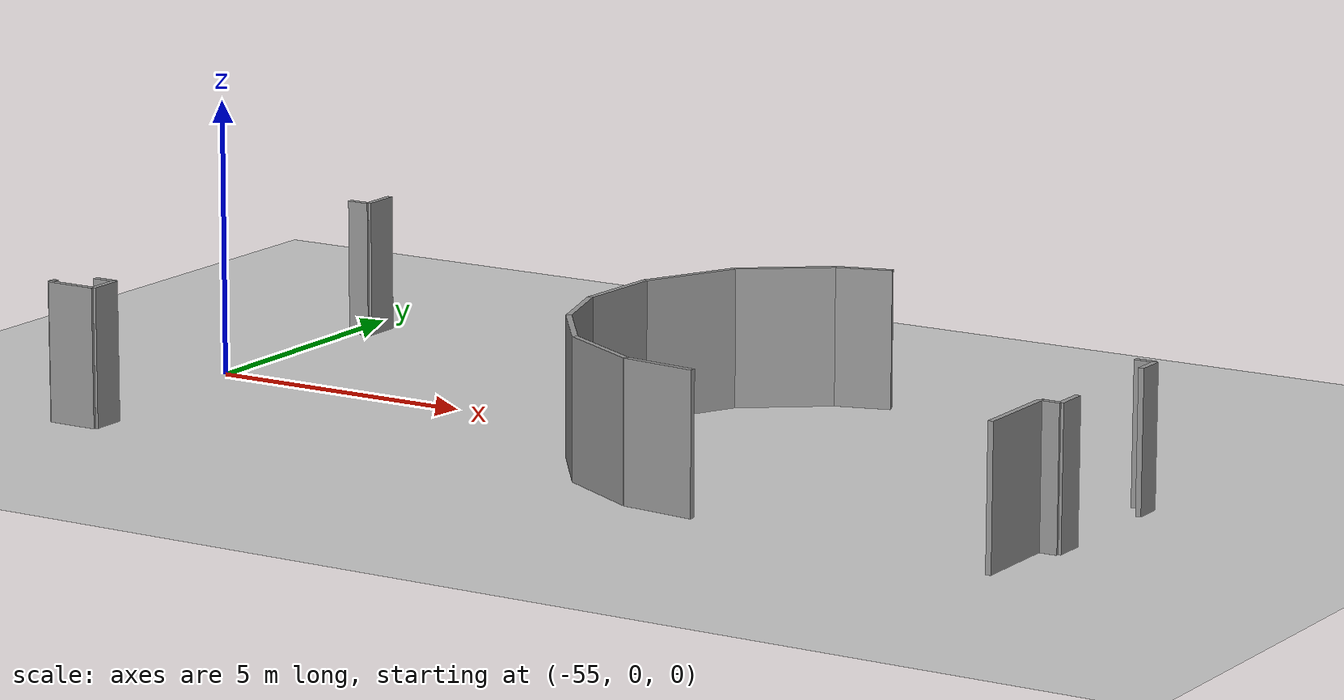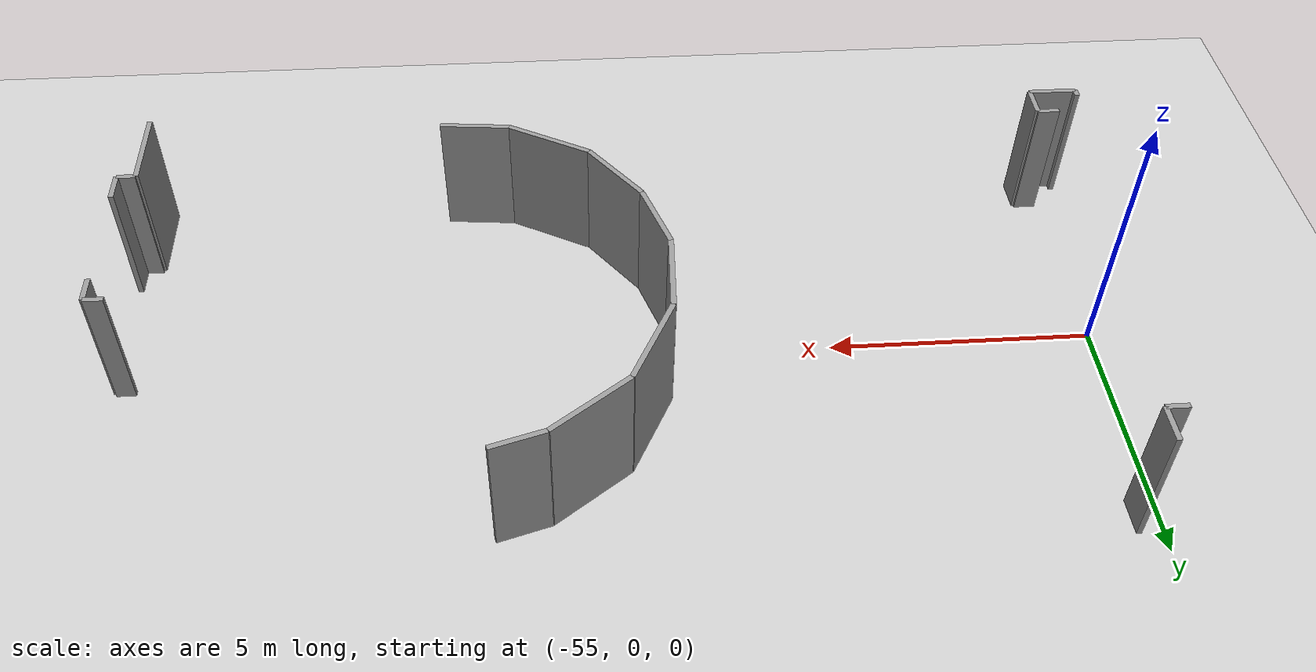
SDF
<sdf version="1.6">
 <world name="default">
  <model name="ground_plane">
   <static>1</static>
   <link name="link">
    <collision name="collision">
     <geometry><plane><normal>0 0 1</normal><size>100 100</size></plane></geometry>
     <surface><friction><ode><mu>100</mu><mu2>50</mu2></ode></friction></surface>
    </collision>
    <visual name="visual">
     <cast_shadows>0</cast_shadows>
     <geometry><plane><normal>0 0 1</normal><size>100 100</size></plane></geometry>
     <material>
      <script><uri>file://media/materials/scripts/gazebo.material</uri><name>Gazebo/Grey</name></script>
     </material>
    </visual>
   </link>
  </model>
  <model name="50041170">
   <static>1</static>
   <link name="Wall_4">
    <collision name="Wall_4_Collision">
     <geometry><box><size>0.164513979245 0.1 2.5</size></box></geometry>
     <pose>0.0822569896227 0 1.25 0 0 0</pose>
    </collision>
    <visual name="Wall_4_Visual">
     <pose>0.0822569896227 0 1.25 0 0 0</pose>
     <geometry><box><size>0.164513979245 0.1 2.5</size></box></geometry>
     <material>
      <script><uri>file://media/materials/scripts/gazebo.material</uri><name>Gazebo/Grey</name></script>
      <ambient>1 1 1 1</ambient>
     </material>
    </visual>
    <pose>10.9759766431 -31.3112246517 0 0 0 -1.57079632679</pose>
   </link>
   <link name="Wall_5">
    <collision name="Wall_5_Collision">
     <geometry><box><size>0.927422170036 0.1 2.5</size></box></geometry>
     <pose>0.463711085018 0 1.25 0 0 0</pose>
    </collision>
    <visual name="Wall_5_Visual">
     <pose>0.463711085018 0 1.25 0 0 0</pose>
     <geometry><box><size>0.927422170036 0.1 2.5</size></box></geometry>
     <material>
      <script><uri>file://media/materials/scripts/gazebo.material</uri><name>Gazebo/Grey</name></script>
      <ambient>1 1 1 1</ambient>
     </material>
    </visual>
    <pose>10.9759766431 -31.475738631 0 0 0 0.0</pose>
   </link>
   <link name="Wall_6">
    <collision name="Wall_6_Collision">
     <geometry><box><size>0.631017739837 0.1 2.5</size></box></geometry>
     <pose>0.315508869918 0 1.25 0 0 0</pose>
    </collision>
    <visual name="Wall_6_Visual">
     <pose>0.315508869918 0 1.25 0 0 0</pose>
     <geometry><box><size>0.631017739837 0.1 2.5</size></box></geometry>
     <material>
      <script><uri>file://media/materials/scripts/gazebo.material</uri><name>Gazebo/Grey</name></script>
      <ambient>1 1 1 1</ambient>
     </material>
    </visual>
    <pose>11.9033988131 -31.475738631 0 0 0 1.57079632679</pose>
   </link>
   <link name="Wall_7">
    <collision name="Wall_7_Collision">
     <geometry><box><size>0.428041001555 0.1 2.5</size></box></geometry>
     <pose>0.214020500778 0 1.25 0 0 0</pose>
    </collision>
    <visual name="Wall_7_Visual">
     <pose>0.214020500778 0 1.25 0 0 0</pose>
     <geometry><box><size>0.428041001555 0.1 2.5</size></box></geometry>
     <material>
      <script><uri>file://media/materials/scripts/gazebo.material</uri><name>Gazebo/Grey</name></script>
      <ambient>1 1 1 1</ambient>
     </material>
    </visual>
    <pose>11.9033988131 -30.8447208911 0 0 0 3.14159265359</pose>
   </link>
   <link name="Wall_8">
    <collision name="Wall_8_Collision">
     <geometry><box><size>0.416108660468 0.1 2.5</size></box></geometry>
     <pose>0.208054330234 0 1.25 0 0 0</pose>
    </collision>
    <visual name="Wall_8_Visual">
     <pose>0.208054330234 0 1.25 0 0 0</pose>
     <geometry><box><size>0.416108660468 0.1 2.5</size></box></geometry>
     <material>
      <script><uri>file://media/materials/scripts/gazebo.material</uri><name>Gazebo/Grey</name></script>
      <ambient>1 1 1 1</ambient>
     </material>
    </visual>
    <pose>11.4753578116 -23.0832407731 0 0 0 0.0</pose>
   </link>
   <link name="Wall_9">
    <collision name="Wall_9_Collision">
     <geometry><box><size>0.699692170988 0.1 2.5</size></box></geometry>
     <pose>0.349846085494 0 1.25 0 0 0</pose>
    </collision>
    <visual name="Wall_9_Visual">
     <pose>0.349846085494 0 1.25 0 0 0</pose>
     <geometry><box><size>0.699692170988 0.1 2.5</size></box></geometry>
     <material>
      <script><uri>file://media/materials/scripts/gazebo.material</uri><name>Gazebo/Grey</name></script>
      <ambient>1 1 1 1</ambient>
     </material>
    </visual>
    <pose>11.891466472 -23.0832407731 0 0 0 1.57079632679</pose>
   </link>
   <link name="Wall_24">
    <collision name="Wall_24_Collision">
     <geometry><box><size>1.36351133825 0.1 2.5</size></box></geometry>
     <pose>0.681755669124 0 1.25 0 0 0</pose>
    </collision>
    <visual name="Wall_24_Visual">
     <pose>0.681755669124 0 1.25 0 0 0</pose>
     <geometry><box><size>1.36351133825 0.1 2.5</size></box></geometry>
     <material>
      <script><uri>file://media/materials/scripts/gazebo.material</uri><name>Gazebo/Grey</name></script>
      <ambient>1 1 1 1</ambient>
     </material>
    </visual>
    <pose>23.7745549173 -31.1050744185 0 0 0 3.04564796465</pose>
   </link>
   <link name="Wall_25">
    <collision name="Wall_25_Collision">
     <geometry><box><size>1.7511077054 0.1 2.5</size></box></geometry>
     <pose>0.875553852698 0 1.25 0 0 0</pose>
    </collision>
    <visual name="Wall_25_Visual">
     <pose>0.875553852698 0 1.25 0 0 0</pose>
     <geometry><box><size>1.7511077054 0.1 2.5</size></box></geometry>
     <material>
      <script><uri>file://media/materials/scripts/gazebo.material</uri><name>Gazebo/Grey</name></script>
      <ambient>1 1 1 1</ambient>
     </material>
    </visual>
    <pose>22.4173145886 -30.9744533655 0 0 0 2.63526865512</pose>
   </link>
   <link name="Wall_26">
    <collision name="Wall_26_Collision">
     <geometry><box><size>1.56774744888 0.1 2.5</size></box></geometry>
     <pose>0.783873724441 0 1.25 0 0 0</pose>
    </collision>
    <visual name="Wall_26_Visual">
     <pose>0.783873724441 0 1.25 0 0 0</pose>
     <geometry><box><size>1.56774744888 0.1 2.5</size></box></geometry>
     <material>
      <script><uri>file://media/materials/scripts/gazebo.material</uri><name>Gazebo/Grey</name></script>
      <ambient>1 1 1 1</ambient>
     </material>
    </visual>
    <pose>20.8859128558 -30.1252261115 0 0 0 2.20509916548</pose>
   </link>
   <link name="Wall_27">
    <collision name="Wall_27_Collision">
     <geometry><box><size>1.41627703458 0.1 2.5</size></box></geometry>
     <pose>0.70813851729 0 1.25 0 0 0</pose>
    </collision>
    <visual name="Wall_27_Visual">
     <pose>0.70813851729 0 1.25 0 0 0</pose>
     <geometry><box><size>1.41627703458 0.1 2.5</size></box></geometry>
     <material>
      <script><uri>file://media/materials/scripts/gazebo.material</uri><name>Gazebo/Grey</name></script>
      <ambient>1 1 1 1</ambient>
     </material>
    </visual>
    <pose>19.9568404684 -28.8624289931 0 0 0 1.87792124462</pose>
   </link>
   <link name="Wall_28">
    <collision name="Wall_28_Collision">
     <geometry><box><size>1.62845159122 0.1 2.5</size></box></geometry>
     <pose>0.814225795608 0 1.25 0 0 0</pose>
    </collision>
    <visual name="Wall_28_Visual">
     <pose>0.814225795608 0 1.25 0 0 0</pose>
     <geometry><box><size>1.62845159122 0.1 2.5</size></box></geometry>
     <material>
      <script><uri>file://media/materials/scripts/gazebo.material</uri><name>Gazebo/Grey</name></script>
      <ambient>1 1 1 1</ambient>
     </material>
    </visual>
    <pose>19.5286725271 -27.5124242328 0 0 0 1.51284613601</pose>
   </link>
   <link name="Wall_29">
    <collision name="Wall_29_Collision">
     <geometry><box><size>1.83717637317 0.1 2.5</size></box></geometry>
     <pose>0.918588186587 0 1.25 0 0 0</pose>
    </collision>
    <visual name="Wall_29_Visual">
     <pose>0.918588186587 0 1.25 0 0 0</pose>
     <geometry><box><size>1.83717637317 0.1 2.5</size></box></geometry>
     <material>
      <script><uri>file://media/materials/scripts/gazebo.material</uri><name>Gazebo/Grey</name></script>
      <ambient>1 1 1 1</ambient>
     </material>
    </visual>
    <pose>19.6229887976 -25.8867062296 0 0 0 1.10362608234</pose>
   </link>
   <link name="Wall_30">
    <collision name="Wall_30_Collision">
     <geometry><box><size>1.77817270613 0.1 2.5</size></box></geometry>
     <pose>0.889086353064 0 1.25 0 0 0</pose>
    </collision>
    <visual name="Wall_30_Visual">
     <pose>0.889086353064 0 1.25 0 0 0</pose>
     <geometry><box><size>1.77817270613 0.1 2.5</size></box></geometry>
     <material>
      <script><uri>file://media/materials/scripts/gazebo.material</uri><name>Gazebo/Grey</name></script>
      <ambient>1 1 1 1</ambient>
     </material>
    </visual>
    <pose>20.4503824061 -24.2463901495 0 0 0 0.643429721015</pose>
   </link>
   <link name="Wall_31">
    <collision name="Wall_31_Collision">
     <geometry><box><size>1.02394514756 0.1 2.5</size></box></geometry>
     <pose>0.511972573782 0 1.25 0 0 0</pose>
    </collision>
    <visual name="Wall_31_Visual">
     <pose>0.511972573782 0 1.25 0 0 0</pose>
     <geometry><box><size>1.02394514756 0.1 2.5</size></box></geometry>
     <material>
      <script><uri>file://media/materials/scripts/gazebo.material</uri><name>Gazebo/Grey</name></script>
      <ambient>1 1 1 1</ambient>
     </material>
    </visual>
    <pose>21.8729967313 -23.1795880804 0 0 0 0.29497159328</pose>
   </link>
   <link name="Wall_37">
    <collision name="Wall_37_Collision">
     <geometry><box><size>0.370156453302 0.1 2.5</size></box></geometry>
     <pose>0.185078226651 0 1.25 0 0 0</pose>
    </collision>
    <visual name="Wall_37_Visual">
     <pose>0.185078226651 0 1.25 0 0 0</pose>
     <geometry><box><size>0.370156453302 0.1 2.5</size></box></geometry>
     <material>
      <script><uri>file://media/materials/scripts/gazebo.material</uri><name>Gazebo/Grey</name></script>
      <ambient>1 1 1 1</ambient>
     </material>
    </visual>
    <pose>29.4937006125 -26.5979499222 0 0 0 0.0</pose>
   </link>
   <link name="Wall_38">
    <collision name="Wall_38_Collision">
     <geometry><box><size>0.51537558313 0.1 2.5</size></box></geometry>
     <pose>0.257687791565 0 1.25 0 0 0</pose>
    </collision>
    <visual name="Wall_38_Visual">
     <pose>0.257687791565 0 1.25 0 0 0</pose>
     <geometry><box><size>0.51537558313 0.1 2.5</size></box></geometry>
     <material>
      <script><uri>file://media/materials/scripts/gazebo.material</uri><name>Gazebo/Grey</name></script>
      <ambient>1 1 1 1</ambient>
     </material>
    </visual>
    <pose>29.8638570658 -26.5979499222 0 0 0 -1.57079632679</pose>
   </link>
   <link name="Wall_39">
    <collision name="Wall_39_Collision">
     <geometry><box><size>0.580622639713 0.1 2.5</size></box></geometry>
     <pose>0.290311319857 0 1.25 0 0 0</pose>
    </collision>
    <visual name="Wall_39_Visual">
     <pose>0.290311319857 0 1.25 0 0 0</pose>
     <geometry><box><size>0.580622639713 0.1 2.5</size></box></geometry>
     <material>
      <script><uri>file://media/materials/scripts/gazebo.material</uri><name>Gazebo/Grey</name></script>
      <ambient>1 1 1 1</ambient>
     </material>
    </visual>
    <pose>29.8638570658 -29.3124305798 0 0 0 -1.57079632679</pose>
   </link>
   <link name="Wall_40">
    <collision name="Wall_40_Collision">
     <geometry><box><size>0.36292088477 0.1 2.5</size></box></geometry>
     <pose>0.181460442385 0 1.25 0 0 0</pose>
    </collision>
    <visual name="Wall_40_Visual">
     <pose>0.181460442385 0 1.25 0 0 0</pose>
     <geometry><box><size>0.36292088477 0.1 2.5</size></box></geometry>
     <material>
      <script><uri>file://media/materials/scripts/gazebo.material</uri><name>Gazebo/Grey</name></script>
      <ambient>1 1 1 1</ambient>
     </material>
    </visual>
    <pose>29.8638570658 -29.8930532195 0 0 0 3.14159265359</pose>
   </link>
   <link name="Wall_41">
    <collision name="Wall_41_Collision">
     <geometry><box><size>1.66202278569 0.1 2.5</size></box></geometry>
     <pose>0.831011392847 0 1.25 0 0 0</pose>
    </collision>
    <visual name="Wall_41_Visual">
     <pose>0.831011392847 0 1.25 0 0 0</pose>
     <geometry><box><size>1.66202278569 0.1 2.5</size></box></geometry>
     <material>
      <script><uri>file://media/materials/scripts/gazebo.material</uri><name>Gazebo/Grey</name></script>
      <ambient>1 1 1 1</ambient>
     </material>
    </visual>
    <pose>29.500936181 -29.8930532195 0 0 0 -1.57079632679</pose>
   </link>
   <pose>-66.45 26.9909095237 0 0 0 0</pose>
  </model>
 </world>
</sdf>
